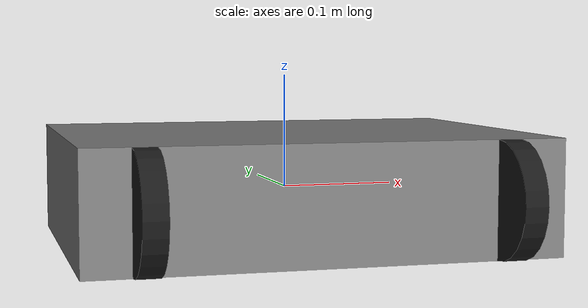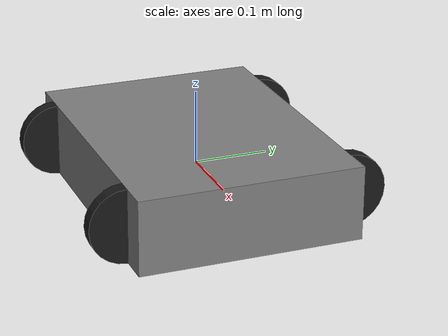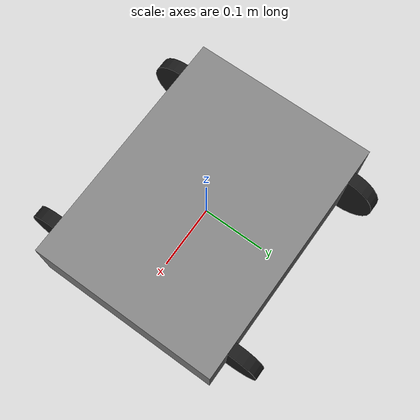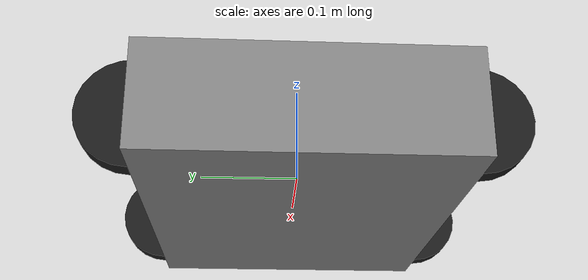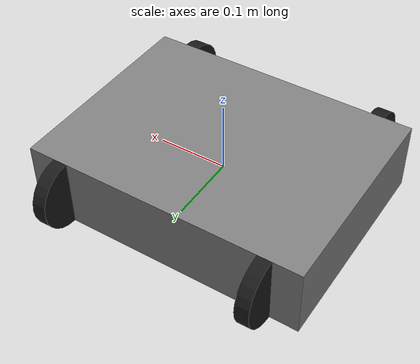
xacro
<?xml version="1.0"?>
<robot name="simple_robot" xmlns:xacro="http://ros.org/wiki/xacro">
  <!-- Base link as a box -->
  <link name="base_link">
    <visual>
      <geometry>
        <box size="0.4 0.3 0.1"/>
      </geometry>
      <material name="Gray">
        <color rgba="0.5 0.5 0.5 1"/>
      </material>
    </visual>
    <collision>
      <geometry>
        <box size="0.4 0.3 0.1"/>
      </geometry>
    </collision>
    <inertial>
      <mass value="1.0"/>
      <origin xyz="0 0 0"/>
      <inertia ixx="0.01" iyy="0.01" izz="0.02" ixy="0" ixz="0" iyz="0"/>
    </inertial>
  </link>
  <!-- Front left wheel -->
  <link name="front_left_wheel">
    <visual>
      <geometry>
        <cylinder length="0.02" radius="0.05"/>
      </geometry>
      <material name="Black">
        <color rgba="0.1 0.1 0.1 1"/>
      </material>
    </visual>
    <collision>
      <geometry>
        <cylinder length="0.02" radius="0.05"/>
      </geometry>
    </collision>
    <inertial>
      <mass value="0.2"/>
      <origin xyz="0 0 0"/>
      <inertia ixx="0.0002" iyy="0.0002" izz="0.0001" ixy="0" ixz="0" iyz="0"/>
    </inertial>
  </link>
  <joint name="front_left_wheel_joint" type="continuous">
    <parent link="base_link"/>
    <child link="front_left_wheel"/>
    <origin xyz="0.15 0.15 0" rpy="0 1.5708 0"/>
    <axis xyz="0 0 1"/>
  </joint>
  <!-- Front right wheel -->
  <link name="front_right_wheel">
    <visual>
      <geometry>
        <cylinder length="0.02" radius="0.05"/>
      </geometry>
      <material name="Black"/>
    </visual>
    <collision>
      <geometry>
        <cylinder length="0.02" radius="0.05"/>
      </geometry>
    </collision>
    <inertial>
      <mass value="0.2"/>
      <origin xyz="0 0 0"/>
      <inertia ixx="0.0002" iyy="0.0002" izz="0.0001" ixy="0" ixz="0" iyz="0"/>
    </inertial>
  </link>
  <joint name="front_right_wheel_joint" type="continuous">
    <parent link="base_link"/>
    <child link="front_right_wheel"/>
    <origin xyz="0.15 -0.15 0" rpy="0 1.5708 0"/>
    <axis xyz="0 0 1"/>
  </joint>
  <!-- Rear left wheel -->
  <link name="rear_left_wheel">
    <visual>
      <geometry>
        <cylinder length="0.02" radius="0.05"/>
      </geometry>
      <material name="Black">
        <color rgba="0.1 0.1 0.1 1"/>
      </material>
    </visual>
    <collision>
      <geometry>
        <cylinder length="0.02" radius="0.05"/>
      </geometry>
    </collision>
    <inertial>
      <mass value="0.2"/>
      <origin xyz="0 0 0"/>
      <inertia ixx="0.0002" iyy="0.0002" izz="0.0001" ixy="0" ixz="0" iyz="0"/>
    </inertial>
  </link>
  <joint name="rear_left_wheel_joint" type="continuous">
    <parent link="base_link"/>
    <child link="rear_left_wheel"/>
    <origin xyz="-0.15 0.15 0" rpy="0 1.5708 0"/>
    <axis xyz="0 0 1"/>
  </joint>
  <!-- Rear right wheel -->
  <link name="rear_right_wheel">
    <visual>
      <geometry>
        <cylinder length="0.02" radius="0.05"/>
      </geometry>
      <material name="Black"/>
    </visual>
    <collision>
      <geometry>
        <cylinder length="0.02" radius="0.05"/>
      </geometry>
    </collision>
    <inertial>
      <mass value="0.2"/>
      <origin xyz="0 0 0"/>
      <inertia ixx="0.0002" iyy="0.0002" izz="0.0001" ixy="0" ixz="0" iyz="0"/>
    </inertial>
  </link>
  <joint name="rear_right_wheel_joint" type="continuous">
    <parent link="base_link"/>
    <child link="rear_right_wheel"/>
    <origin xyz="-0.15 -0.15 0" rpy="0 1.5708 0"/>
    <axis xyz="0 0 1"/>
  </joint>
  <!-- Laser -->
  <link name="laser_link"/>
  <joint name="laser_joint" type="fixed">
    <parent link="base_link"/>
    <child link="laser_link"/>
    <origin xyz="0.1 0 0.05" rpy="0 0 0"/>
  </joint>
  <!-- Gazebo laser plugin -->
  <gazebo>
    <plugin name="gazebo_ros_laser" filename="libgazebo_ros_laser.so">
      <topicName>/simple_scan</topicName>
      <frameName>laser_link</frameName>
    </plugin>
  </gazebo>
</robot>
